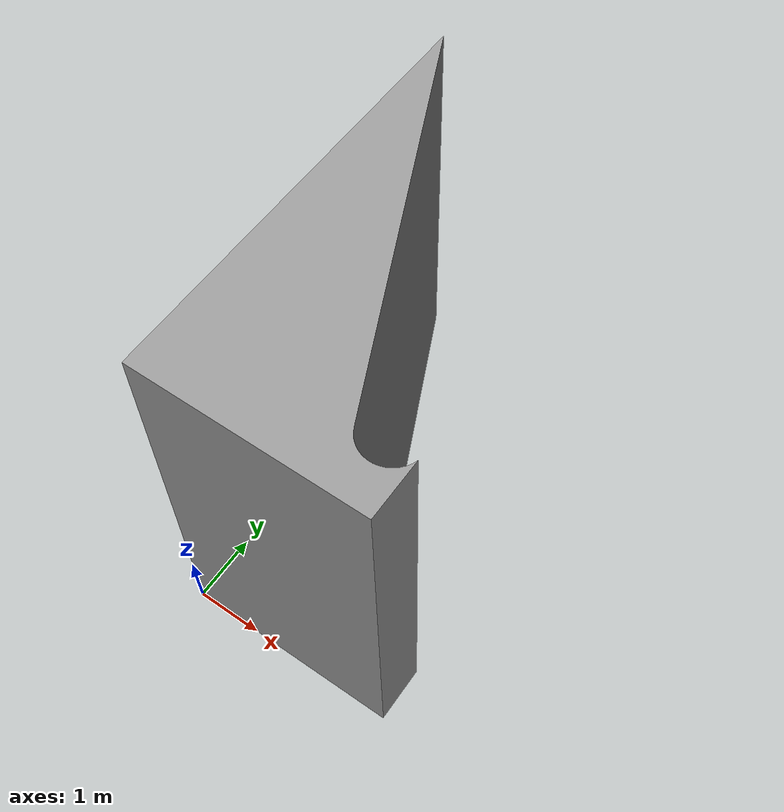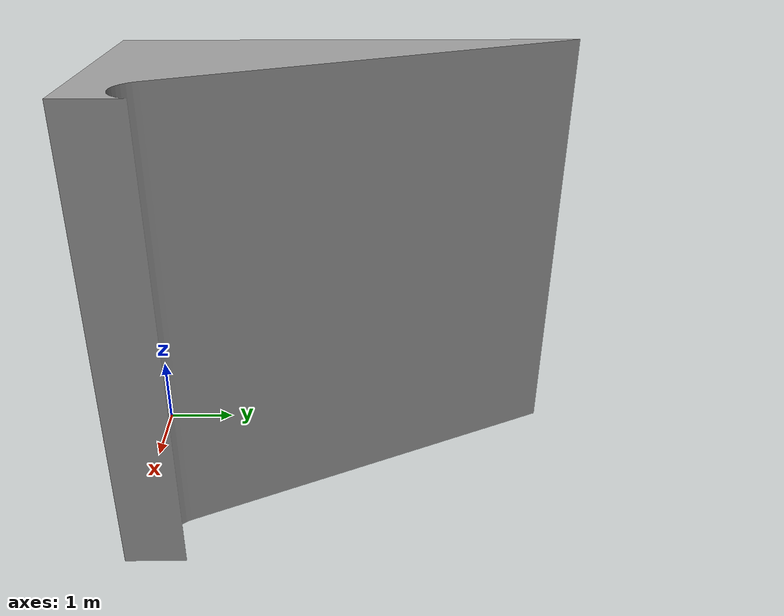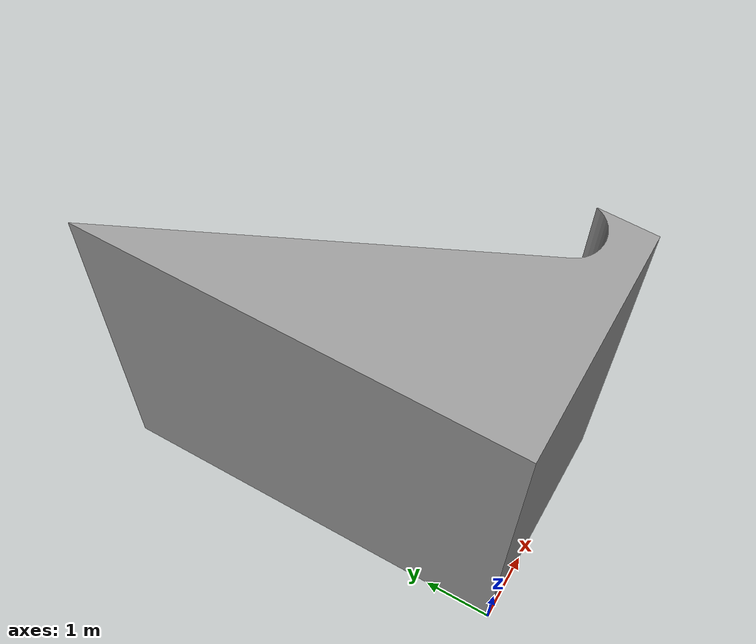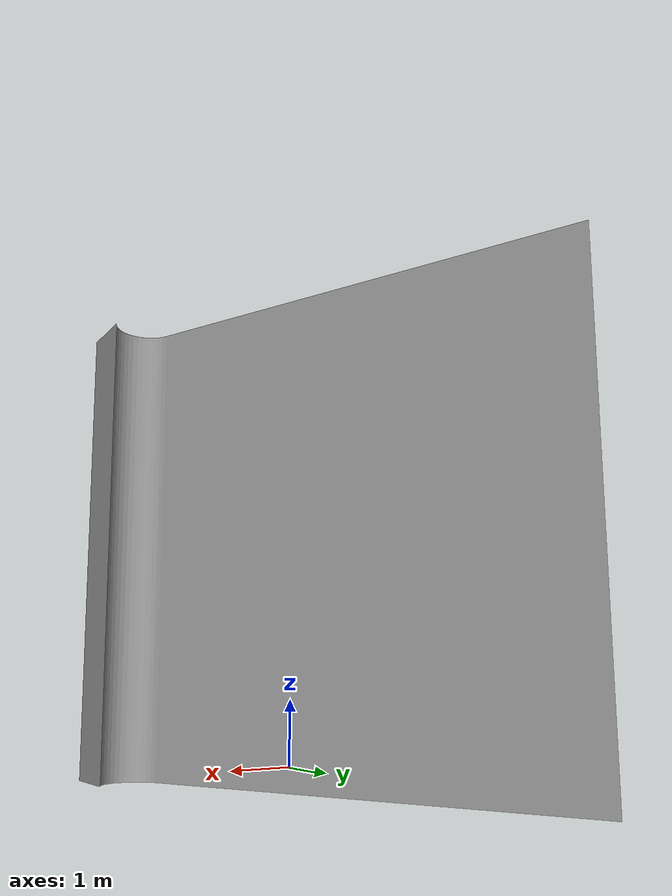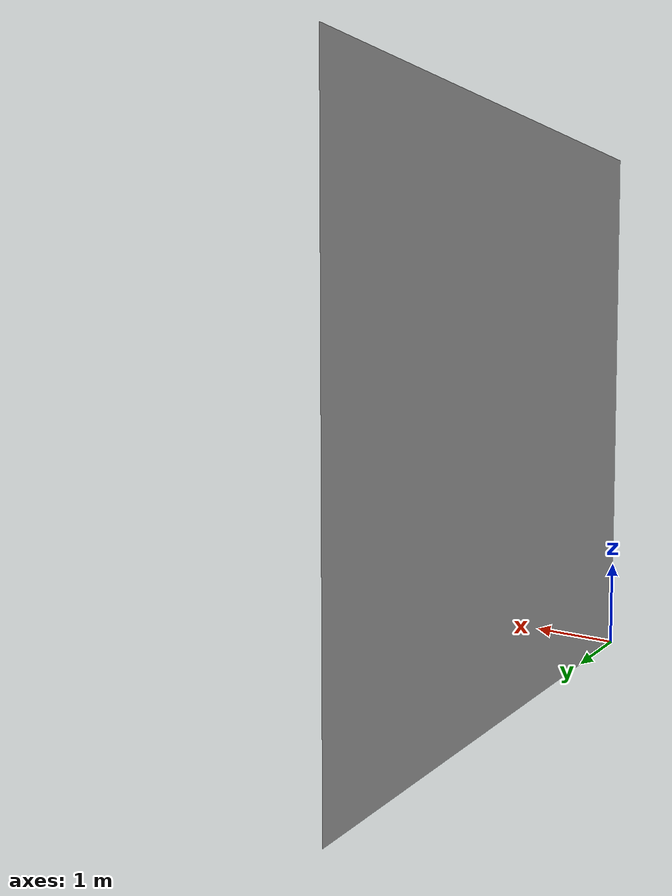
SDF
<?xml version='1.0'?>
<sdf version='1.7'>
  <model name='ramp'>
    <static>true</static>
    <link name='link'>
      <visual name='visual'>
        <geometry>
          <mesh>
            <uri>model://ramp/meshes/ramp.STL</uri>
            <scale>0.002 0.002 0.002</scale>
          </mesh>
        </geometry>
        <material>
          <script>
            <name>Gazebo/Grey</name>
            <uri>file://media/materials/scripts/gazebo.material</uri>
          </script>
        </material>
      </visual>
      <collision name='collision'>
        <geometry>
          <mesh>
            <uri>model://ramp/meshes/ramp.STL</uri>
            <scale>0.002 0.002 0.002</scale>
          </mesh>
        </geometry>
        <surface>
          <friction>
            <ode>
              <mu>50</mu>
              <mu2>100</mu2>
            </ode>
          </friction>
        </surface>
      </collision>
    </link>
  </model>
</sdf>
